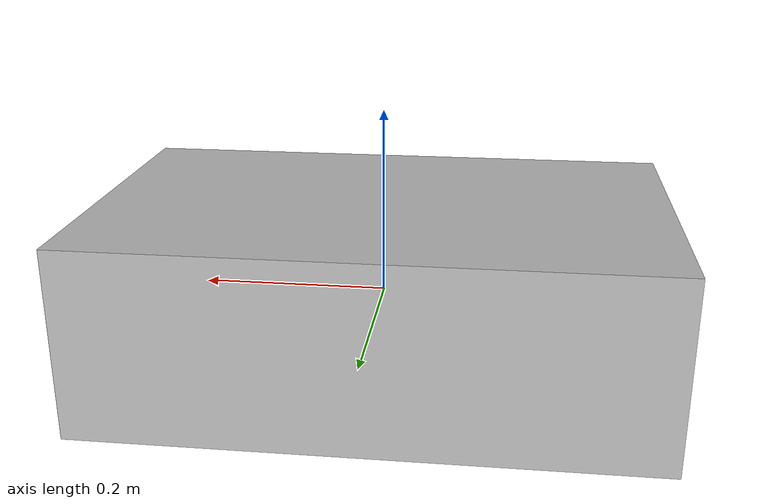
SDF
<?xml version="1.0" ?>
<sdf version="1.4">
  <model name="order_bin">
    <link name="order_bin_link">
      <inertial>
        <pose>0.0 0.0 0.0 0 0 0</pose>
        <mass>0.5</mass>
        <inertia>
          <ixx>0.0017708</ixx>
          <ixy>0.001</ixy>
          <ixz>0.001</ixz>
          <izz>0.00104</izz>
          <iyz>0.001</iyz>
          <iyy>0.02604</iyy>
        </inertia>
      </inertial>

      <visual name="order_bin_visual">
        <pose>0 0 0 0 0 0 </pose>
        <geometry>
          <box>
	    <size>0.6096 0.381 0.2032</size>
	  </box>
        </geometry>
	<material>Gazebo/Red</material>
      </visual>

      <collision name="order_bin_collision">
        <pose>0 0 0 0 0 0</pose>
        <geometry>
	  <box>
	    <size>0.6096 0.381 0.2032</size>
	  </box>
        </geometry>
        <surface>
          <friction>
            <ode>
              <mu>1.0</mu>
              <mu2>1.0</mu2>
              <fdir1>0.0 0.0 0.0</fdir1>
              <slip1>1.0</slip1>
              <slip2>1.0</slip2>
            </ode>
          </friction>
        </surface>
      </collision>

    </link>
    <static>true</static>
  </model>
</sdf>
